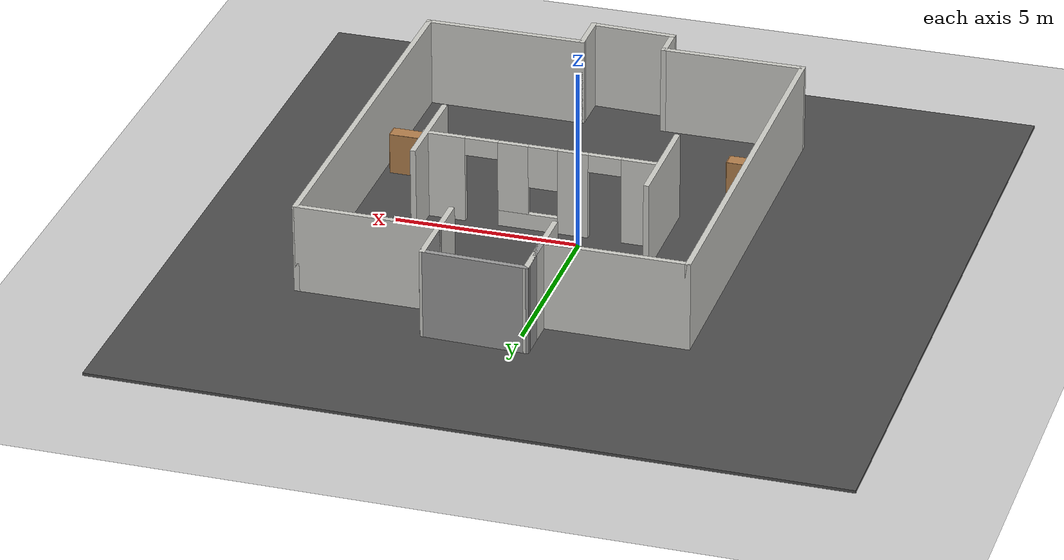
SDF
<sdf version="1.5">
 <world name="default">
  <light name="sun" type="directional">
   <pose>0 0 10 0 -0 0</pose>
   <diffuse>0.8 0.8 0.8 1</diffuse>
   <specular>0.2 0.2 0.2 1</specular>
   <attenuation>
    <range>1000</range>
    <constant>0.9</constant>
    <linear>0.01</linear>
    <quadratic>0.001</quadratic>
   </attenuation>
   <direction>-0.5 0.1 -0.9</direction>
  </light>
  <model name="ground_plane">
   <static>1</static>
   <link name="link">
    <collision name="collision">
     <geometry><plane><normal>0 0 1</normal><size>100 100</size></plane></geometry>
     <surface><friction><ode><mu>100</mu><mu2>50</mu2></ode></friction></surface>
    </collision>
    <visual name="visual">
     <cast_shadows>0</cast_shadows>
     <geometry><plane><normal>0 0 1</normal><size>100 100</size></plane></geometry>
     <material>
      <script><uri>file://media/materials/scripts/gazebo.material</uri><name>Gazebo/Grey</name></script>
     </material>
    </visual>
   </link>
  </model>
  <physics name="default_physics" default="0" type="ode">
   <max_step_size>0.001</max_step_size>
   <real_time_factor>1</real_time_factor>
   <real_time_update_rate>1000</real_time_update_rate>
   <gravity>0 0 -9.8</gravity>
   <magnetic_field>6e-06 2.3e-05 -4.2e-05</magnetic_field>
  </physics>
  <scene><ambient>0.4 0.4 0.4 1</ambient><background>0.7 0.7 0.7 1</background><shadows>1</shadows></scene>
  <audio><device>default</device></audio>
  <spherical_coordinates>
   <surface_model>EARTH_WGS84</surface_model>
   <latitude_deg>0</latitude_deg>
   <longitude_deg>0</longitude_deg>
   <elevation>0</elevation>
   <heading_deg>0</heading_deg>
  </spherical_coordinates>
  <model name="corridor2">
   <pose>1 -1 0 0 -0 0</pose>
   <link name="Wall_0">
    <collision name="Wall_0_Collision">
     <geometry><box><size>1 0.15 2.5</size></box></geometry>
     <pose>0 0 1.25 0 -0 0</pose>
    </collision>
    <visual name="Wall_0_Visual">
     <pose>0 0 1.25 0 -0 0</pose>
     <geometry><box><size>1 0.15 2.5</size></box></geometry>
     <material>
      <script><uri>file://media/materials/scripts/gazebo.material</uri><name>Gazebo/CeilingTiled</name></script>
      <ambient>0.435294 0.796078 0.67451 1</ambient>
     </material>
    </visual>
    <pose>-1.37832 -6.31137 0 0 -0 1.5708</pose>
   </link>
   <link name="Wall_1">
    <collision name="Wall_1_Collision">
     <geometry><box><size>4 0.15 2.5</size></box></geometry>
     <pose>0 0 1.25 0 -0 0</pose>
    </collision>
    <visual name="Wall_1_Visual">
     <pose>0 0 1.25 0 -0 0</pose>
     <geometry><box><size>4 0.15 2.5</size></box></geometry>
     <material>
      <script><uri>file://media/materials/scripts/gazebo.material</uri><name>Gazebo/CeilingTiled</name></script>
      <ambient>1 1 1 1</ambient>
     </material>
    </visual>
    <pose>-3.30332 -5.88637 0 0 -0 3.14159</pose>
   </link>
   <link name="Wall_10">
    <collision name="Wall_10_Collision">
     <geometry><box><size>1.25 0.15 2.5</size></box></geometry>
     <pose>0 0 1.25 0 -0 0</pose>
    </collision>
    <visual name="Wall_10_Visual">
     <pose>0 0 1.25 0 -0 0</pose>
     <geometry><box><size>1.25 0.15 2.5</size></box></geometry>
     <material>
      <script><uri>file://media/materials/scripts/gazebo.material</uri><name>Gazebo/CeilingTiled</name></script>
      <ambient>0.435294 0.796078 0.67451 1</ambient>
     </material>
    </visual>
    <pose>0.878323 -6.26318 0 0 0 -1.5708</pose>
   </link>
   <link name="Wall_11">
    <collision name="Wall_11_Collision">
     <geometry><box><size>2.40795 0.15 2.5</size></box></geometry>
     <pose>0 0 1.25 0 -0 0</pose>
    </collision>
    <visual name="Wall_11_Visual">
     <pose>0 0 1.25 0 -0 0</pose>
     <geometry><box><size>2.40795 0.15 2.5</size></box></geometry>
     <material>
      <script><uri>file://media/materials/scripts/gazebo.material</uri><name>Gazebo/CeilingTiled</name></script>
      <ambient>0.435294 0.796078 0.67451 1</ambient>
     </material>
    </visual>
    <pose>-0.25 -6.77478 0 0 -0 3.10757</pose>
   </link>
   <link name="Wall_13">
    <collision name="Wall_13_Collision">
     <geometry><box><size>2.90772 0.15 2.5</size></box></geometry>
     <pose>0 0 1.25 0 -0 0</pose>
    </collision>
    <visual name="Wall_13_Visual">
     <pose>0 0 1.25 0 -0 0</pose>
     <geometry><box><size>2.90772 0.15 2.5</size></box></geometry>
     <material>
      <script><uri>file://media/materials/scripts/gazebo.material</uri><name>Gazebo/Grey</name></script>
      <ambient>1 1 1 1</ambient>
     </material>
    </visual>
    <pose>0 6.77522 0 0 0 -0.027857</pose>
   </link>
   <link name="Wall_15">
    <collision name="Wall_15_Collision">
     <geometry><box><size>1.5 0.15 2.5</size></box></geometry>
     <pose>0 0 1.25 0 -0 0</pose>
    </collision>
    <visual name="Wall_15_Visual">
     <pose>0 0 1.25 0 -0 0</pose>
     <geometry><box><size>1.5 0.15 2.5</size></box></geometry>
     <material>
      <script><uri>file://media/materials/scripts/gazebo.material</uri><name>Gazebo/CeilingTiled</name></script>
      <ambient>0.996078 0.47451 0.0196078 1</ambient>
     </material>
    </visual>
    <pose>-1.37832 6.13863 0 0 0 -1.5708</pose>
   </link>
   <link name="Wall_16">
    <collision name="Wall_16_Collision">
     <geometry><box><size>1.25 0.15 2.5</size></box></geometry>
     <pose>0 0 1.25 0 -0 0</pose>
    </collision>
    <visual name="Wall_16_Visual">
     <pose>0 0 1.25 0 -0 0</pose>
     <geometry><box><size>1.25 0.15 2.5</size></box></geometry>
     <material>
      <script><uri>file://media/materials/scripts/gazebo.material</uri><name>Gazebo/CeilingTiled</name></script>
      <ambient>0.996078 0.47451 0.0196078 1</ambient>
     </material>
    </visual>
    <pose>-1.37832 4.91363 0 0 0 -1.5708</pose>
   </link>
   <link name="Wall_18">
    <collision name="Wall_18_Collision">
     <geometry><box><size>2.90772 0.15 2.5</size></box></geometry>
     <pose>0 0 1.25 0 -0 0</pose>
    </collision>
    <visual name="Wall_18_Visual">
     <pose>0 0 1.25 0 -0 0</pose>
     <geometry><box><size>2.90772 0.15 2.5</size></box></geometry>
     <material>
      <script><uri>file://media/materials/scripts/gazebo.material</uri><name>Gazebo/CeilingTiled</name></script>
      <ambient>0.996078 0.47451 0.0196078 1</ambient>
     </material>
    </visual>
    <pose>0 6.77522 0 0 0 -0.027857</pose>
   </link>
   <link name="Wall_19">
    <collision name="Wall_19_Collision">
     <geometry><box><size>2.5 0.15 2.5</size></box></geometry>
     <pose>0 0 1.25 0 -0 0</pose>
    </collision>
    <visual name="Wall_19_Visual">
     <pose>0 0 1.25 0 -0 0</pose>
     <geometry><box><size>2.5 0.15 2.5</size></box></geometry>
     <material>
      <script><uri>file://media/materials/scripts/gazebo.material</uri><name>Gazebo/CeilingTiled</name></script>
      <ambient>0.996078 0.47451 0.0196078 1</ambient>
     </material>
    </visual>
    <pose>1.37832 5.56182 0 0 0 -1.5708</pose>
   </link>
   <link name="Wall_2">
    <collision name="Wall_2_Collision">
     <geometry><box><size>11.5 0.15 2.5</size></box></geometry>
     <pose>0 0 1.25 0 -0 0</pose>
    </collision>
    <visual name="Wall_2_Visual">
     <pose>0 0 1.25 0 -0 0</pose>
     <geometry><box><size>11.5 0.15 2.5</size></box></geometry>
     <material>
      <script><uri>file://media/materials/scripts/gazebo.material</uri><name>Gazebo/CeilingTiled</name></script>
      <ambient>1 1 1 1</ambient>
     </material>
    </visual>
    <pose>-5.22832 -0.21137 0 0 -0 1.5708</pose>
   </link>
   <link name="Wall_21">
    <collision name="Wall_21_Collision">
     <geometry><box><size>3 0.15 2.5</size></box></geometry>
     <pose>0 0 1.25 0 -0 0</pose>
    </collision>
    <visual name="Wall_21_Visual">
     <pose>0 0 1.25 0 -0 0</pose>
     <geometry><box><size>3 0.15 2.5</size></box></geometry>
     <material>
      <script><uri>file://media/materials/scripts/gazebo.material</uri><name>Gazebo/CeilingTiled</name></script>
      <ambient>0.921569 0.807843 0.615686 1</ambient>
     </material>
    </visual>
    <pose>-3.0673 0.292319 0 0 -0 1.5708</pose>
   </link>
   <link name="Wall_23">
    <pose>0.138295 0.519192 0 0 -0 0</pose>
    <visual name="Wall_23_Visual_0">
     <pose>-2.71863 0 1.25 0 -0 0</pose>
     <geometry><box><size>1.06274 0.15 2.5</size></box></geometry>
     <material>
      <script><uri>file://media/materials/scripts/gazebo.material</uri><name>Gazebo/CeilingTiled</name></script>
      <ambient>0.921569 0.807843 0.615686 1</ambient>
     </material>
    </visual>
    <collision name="Wall_23_Collision_0">
     <geometry><box><size>1.06274 0.15 2.5</size></box></geometry>
     <pose>-2.71863 0 1.25 0 -0 0</pose>
    </collision>
    <visual name="Wall_23_Visual_1">
     <pose>-0.871028 0 1.25 0 -0 0</pose>
     <geometry><box><size>0.832463 0.15 2.5</size></box></geometry>
     <material>
      <script><uri>file://media/materials/scripts/gazebo.material</uri><name>Gazebo/CeilingTiled</name></script>
      <ambient>0.921569 0.807843 0.615686 1</ambient>
     </material>
    </visual>
    <collision name="Wall_23_Collision_1">
     <geometry><box><size>0.832463 0.15 2.5</size></box></geometry>
     <pose>-0.871028 0 1.25 0 -0 0</pose>
    </collision>
    <visual name="Wall_23_Visual_2">
     <pose>2.66383 0 1.25 0 -0 0</pose>
     <geometry><box><size>1.17233 0.15 2.5</size></box></geometry>
     <material>
      <script><uri>file://media/materials/scripts/gazebo.material</uri><name>Gazebo/CeilingTiled</name></script>
      <ambient>0.921569 0.807843 0.615686 1</ambient>
     </material>
    </visual>
    <collision name="Wall_23_Collision_2">
     <geometry><box><size>1.17233 0.15 2.5</size></box></geometry>
     <pose>2.66383 0 1.25 0 -0 0</pose>
    </collision>
    <visual name="Wall_23_Visual_3">
     <pose>0.361435 0 0.25 0 -0 0</pose>
     <geometry><box><size>1.63246 0.15 0.5</size></box></geometry>
     <material>
      <script><uri>file://media/materials/scripts/gazebo.material</uri><name>Gazebo/CeilingTiled</name></script>
      <ambient>0.921569 0.807843 0.615686 1</ambient>
     </material>
    </visual>
    <collision name="Wall_23_Collision_3">
     <geometry><box><size>1.63246 0.15 0.5</size></box></geometry>
     <pose>0.361435 0 0.25 0 -0 0</pose>
    </collision>
    <visual name="Wall_23_Visual_4">
     <pose>0.761435 0 1.5 0 -0 0</pose>
     <geometry><box><size>0.832463 0.15 2</size></box></geometry>
     <material>
      <script><uri>file://media/materials/scripts/gazebo.material</uri><name>Gazebo/CeilingTiled</name></script>
      <ambient>0.921569 0.807843 0.615686 1</ambient>
     </material>
    </visual>
    <collision name="Wall_23_Collision_4">
     <geometry><box><size>0.832463 0.15 2</size></box></geometry>
     <pose>0.761435 0 1.5 0 -0 0</pose>
    </collision>
    <visual name="Wall_23_Visual_5">
     <pose>-0.054797 0 1.9 0 -0 0</pose>
     <geometry><box><size>0.8 0.15 1.2</size></box></geometry>
     <material>
      <script><uri>file://media/materials/scripts/gazebo.material</uri><name>Gazebo/CeilingTiled</name></script>
      <ambient>0.921569 0.807843 0.615686 1</ambient>
     </material>
    </visual>
    <collision name="Wall_23_Collision_5">
     <geometry><box><size>0.8 0.15 1.2</size></box></geometry>
     <pose>-0.054797 0 1.9 0 -0 0</pose>
    </collision>
    <visual name="Wall_23_Visual_6">
     <pose>-1.73726 0 2.25 0 -0 0</pose>
     <geometry><box><size>0.9 0.15 0.5</size></box></geometry>
     <material>
      <script><uri>file://media/materials/scripts/gazebo.material</uri><name>Gazebo/CeilingTiled</name></script>
      <ambient>0.921569 0.807843 0.615686 1</ambient>
     </material>
    </visual>
    <collision name="Wall_23_Collision_6">
     <geometry><box><size>0.9 0.15 0.5</size></box></geometry>
     <pose>-1.73726 0 2.25 0 -0 0</pose>
    </collision>
    <visual name="Wall_23_Visual_7">
     <pose>1.62767 0 2.25 0 -0 0</pose>
     <geometry><box><size>0.9 0.15 0.5</size></box></geometry>
     <material>
      <script><uri>file://media/materials/scripts/gazebo.material</uri><name>Gazebo/CeilingTiled</name></script>
      <ambient>0.921569 0.807843 0.615686 1</ambient>
     </material>
    </visual>
    <collision name="Wall_23_Collision_7">
     <geometry><box><size>0.9 0.15 0.5</size></box></geometry>
     <pose>1.62767 0 2.25 0 -0 0</pose>
    </collision>
   </link>
   <link name="Wall_25">
    <collision name="Wall_25_Collision">
     <geometry><box><size>2.75 0.15 2.5</size></box></geometry>
     <pose>0 0 1.25 0 -0 0</pose>
    </collision>
    <visual name="Wall_25_Visual">
     <pose>0 0 1.25 0 -0 0</pose>
     <geometry><box><size>2.75 0.15 2.5</size></box></geometry>
     <material>
      <script><uri>file://media/materials/scripts/gazebo.material</uri><name>Gazebo/CeilingTiled</name></script>
      <ambient>0.921569 0.807843 0.615686 1</ambient>
     </material>
    </visual>
    <pose>3.29547 0.28985 0 0 0 -1.5708</pose>
   </link>
   <link name="Wall_3">
    <collision name="Wall_3_Collision">
     <geometry><box><size>4 0.15 2.5</size></box></geometry>
     <pose>0 0 1.25 0 -0 0</pose>
    </collision>
    <visual name="Wall_3_Visual">
     <pose>0 0 1.25 0 -0 0</pose>
     <geometry><box><size>4 0.15 2.5</size></box></geometry>
     <material>
      <script><uri>file://media/materials/scripts/gazebo.material</uri><name>Gazebo/CeilingTiled</name></script>
      <ambient>1 1 1 1</ambient>
     </material>
    </visual>
    <pose>-3.30332 5.46363 0 0 -0 0</pose>
   </link>
   <link name="Wall_4">
    <collision name="Wall_4_Collision">
     <geometry><box><size>1.5 0.15 2.5</size></box></geometry>
     <pose>0 0 1.25 0 -0 0</pose>
    </collision>
    <visual name="Wall_4_Visual">
     <pose>0 0 1.25 0 -0 0</pose>
     <geometry><box><size>1.5 0.15 2.5</size></box></geometry>
     <material>
      <script><uri>file://media/materials/scripts/gazebo.material</uri><name>Gazebo/Grey</name></script>
      <ambient>1 1 1 1</ambient>
     </material>
    </visual>
    <pose>-1.37832 6.13863 0 0 -0 1.5708</pose>
   </link>
   <link name="Wall_6">
    <collision name="Wall_6_Collision">
     <geometry><box><size>1.5 0.15 2.5</size></box></geometry>
     <pose>0 0 1.25 0 -0 0</pose>
    </collision>
    <visual name="Wall_6_Visual">
     <pose>0 0 1.25 0 -0 0</pose>
     <geometry><box><size>1.5 0.15 2.5</size></box></geometry>
     <material>
      <script><uri>file://media/materials/scripts/gazebo.material</uri><name>Gazebo/Grey</name></script>
      <ambient>1 1 1 1</ambient>
     </material>
    </visual>
    <pose>1.37832 6.06182 0 0 0 -1.5708</pose>
   </link>
   <link name="Wall_7">
    <collision name="Wall_7_Collision">
     <geometry><box><size>4 0.15 2.5</size></box></geometry>
     <pose>0 0 1.25 0 -0 0</pose>
    </collision>
    <visual name="Wall_7_Visual">
     <pose>0 0 1.25 0 -0 0</pose>
     <geometry><box><size>4 0.15 2.5</size></box></geometry>
     <material>
      <script><uri>file://media/materials/scripts/gazebo.material</uri><name>Gazebo/CeilingTiled</name></script>
      <ambient>1 1 1 1</ambient>
     </material>
    </visual>
    <pose>3.30332 5.38682 0 0 -0 0</pose>
   </link>
   <link name="Wall_8">
    <collision name="Wall_8_Collision">
     <geometry><box><size>11.25 0.15 2.5</size></box></geometry>
     <pose>0 0 1.25 0 -0 0</pose>
    </collision>
    <visual name="Wall_8_Visual">
     <pose>0 0 1.25 0 -0 0</pose>
     <geometry><box><size>11.25 0.15 2.5</size></box></geometry>
     <material>
      <script><uri>file://media/materials/scripts/gazebo.material</uri><name>Gazebo/CeilingTiled</name></script>
      <ambient>1 1 1 1</ambient>
     </material>
    </visual>
    <pose>5.22832 -0.163182 0 0 0 -1.5708</pose>
   </link>
   <link name="Wall_9">
    <collision name="Wall_9_Collision">
     <geometry><box><size>4.5 0.15 2.5</size></box></geometry>
     <pose>0 0 1.25 0 -0 0</pose>
    </collision>
    <visual name="Wall_9_Visual">
     <pose>0 0 1.25 0 -0 0</pose>
     <geometry><box><size>4.5 0.15 2.5</size></box></geometry>
     <material>
      <script><uri>file://media/materials/scripts/gazebo.material</uri><name>Gazebo/CeilingTiled</name></script>
      <ambient>1 1 1 1</ambient>
     </material>
    </visual>
    <pose>3.05332 -5.71318 0 0 -0 3.14159</pose>
   </link>
   <static>1</static>
  </model>
  <model name="asphalt_plane">
   <static>1</static>
   <link name="link">
    <collision name="collision"><geometry><box><size>20 20 0.1</size></box></geometry></collision>
    <visual name="visual">
     <cast_shadows>0</cast_shadows>
     <geometry><box><size>20 20 0.1</size></box></geometry>
     <material>
      <script>
       <uri>model://asphalt_plane/materials/scripts</uri>
       <uri>model://asphalt_plane/materials/textures</uri>
       <name>vrc/asphalt</name>
      </script>
     </material>
    </visual>
   </link>
  </model>
  <model name="bookshelf">
   <static>1</static>
   <link name="link">
    <inertial><mass>1</mass></inertial>
    <collision name="back">
     <pose>0 0.005 0.6 0 -0 0</pose>
     <geometry><box><size>0.9 0.01 1.2</size></box></geometry>
    </collision>
    <visual name="visual1">
     <pose>0 0.005 0.6 0 -0 0</pose>
     <geometry><box><size>0.9 0.01 1.2</size></box></geometry>
     <material>
      <script><uri>file://media/materials/scripts/gazebo.material</uri><name>Gazebo/Wood</name></script>
     </material>
    </visual>
    <collision name="left_side">
     <pose>0.45 -0.195 0.6 0 -0 0</pose>
     <geometry><box><size>0.02 0.4 1.2</size></box></geometry>
    </collision>
    <visual name="visual2">
     <pose>0.45 -0.195 0.6 0 -0 0</pose>
     <geometry><box><size>0.02 0.4 1.2</size></box></geometry>
     <material>
      <script><uri>file://media/materials/scripts/gazebo.material</uri><name>Gazebo/Wood</name></script>
     </material>
    </visual>
    <collision name="right_side">
     <pose>-0.45 -0.195 0.6 0 -0 0</pose>
     <geometry><box><size>0.02 0.4 1.2</size></box></geometry>
    </collision>
    <visual name="visual3">
     <pose>-0.45 -0.195 0.6 0 -0 0</pose>
     <geometry><box><size>0.02 0.4 1.2</size></box></geometry>
     <material>
      <script><uri>file://media/materials/scripts/gazebo.material</uri><name>Gazebo/Wood</name></script>
     </material>
    </visual>
    <collision name="bottom">
     <pose>0 -0.195 0.03 0 -0 0</pose>
     <geometry><box><size>0.88 0.4 0.06</size></box></geometry>
    </collision>
    <visual name="visual4">
     <pose>0 -0.195 0.03 0 -0 0</pose>
     <geometry><box><size>0.88 0.4 0.06</size></box></geometry>
     <material>
      <script><uri>file://media/materials/scripts/gazebo.material</uri><name>Gazebo/Wood</name></script>
     </material>
    </visual>
    <collision name="top">
     <pose>0 -0.195 1.19 0 -0 0</pose>
     <geometry><box><size>0.88 0.4 0.02</size></box></geometry>
    </collision>
    <visual name="visual5">
     <pose>0 -0.195 1.19 0 -0 0</pose>
     <geometry><box><size>0.88 0.4 0.02</size></box></geometry>
     <material>
      <script><uri>file://media/materials/scripts/gazebo.material</uri><name>Gazebo/Wood</name></script>
     </material>
    </visual>
    <collision name="low_shelf">
     <pose>0 -0.195 0.43 0 -0 0</pose>
     <geometry><box><size>0.88 0.4 0.02</size></box></geometry>
    </collision>
    <visual name="visual6">
     <pose>0 -0.195 0.43 0 -0 0</pose>
     <geometry><box><size>0.88 0.4 0.02</size></box></geometry>
     <material>
      <script><uri>file://media/materials/scripts/gazebo.material</uri><name>Gazebo/Wood</name></script>
     </material>
    </visual>
    <collision name="high_shelf">
     <pose>0 -0.195 0.8 0 -0 0</pose>
     <geometry><box><size>0.88 0.4 0.02</size></box></geometry>
    </collision>
    <visual name="visual7">
     <pose>0 -0.195 0.8 0 -0 0</pose>
     <geometry><box><size>0.88 0.4 0.02</size></box></geometry>
     <material>
      <script><uri>file://media/materials/scripts/gazebo.material</uri><name>Gazebo/Wood</name></script>
     </material>
    </visual>
   </link>
   <pose>-3.52772 -3.43529 0 0 -0 0</pose>
  </model>
  <model name="bookshelf_clone">
   <static>1</static>
   <link name="link">
    <inertial><mass>1</mass></inertial>
    <collision name="back">
     <pose>0 0.005 0.6 0 -0 0</pose>
     <geometry><box><size>0.9 0.01 1.2</size></box></geometry>
    </collision>
    <visual name="visual1">
     <pose>0 0.005 0.6 0 -0 0</pose>
     <geometry><box><size>0.9 0.01 1.2</size></box></geometry>
     <material>
      <script><uri>file://media/materials/scripts/gazebo.material</uri><name>Gazebo/Wood</name></script>
     </material>
    </visual>
    <collision name="left_side">
     <pose>0.45 -0.195 0.6 0 -0 0</pose>
     <geometry><box><size>0.02 0.4 1.2</size></box></geometry>
    </collision>
    <visual name="visual2">
     <pose>0.45 -0.195 0.6 0 -0 0</pose>
     <geometry><box><size>0.02 0.4 1.2</size></box></geometry>
     <material>
      <script><uri>file://media/materials/scripts/gazebo.material</uri><name>Gazebo/Wood</name></script>
     </material>
    </visual>
    <collision name="right_side">
     <pose>-0.45 -0.195 0.6 0 -0 0</pose>
     <geometry><box><size>0.02 0.4 1.2</size></box></geometry>
    </collision>
    <visual name="visual3">
     <pose>-0.45 -0.195 0.6 0 -0 0</pose>
     <geometry><box><size>0.02 0.4 1.2</size></box></geometry>
     <material>
      <script><uri>file://media/materials/scripts/gazebo.material</uri><name>Gazebo/Wood</name></script>
     </material>
    </visual>
    <collision name="bottom">
     <pose>0 -0.195 0.03 0 -0 0</pose>
     <geometry><box><size>0.88 0.4 0.06</size></box></geometry>
    </collision>
    <visual name="visual4">
     <pose>0 -0.195 0.03 0 -0 0</pose>
     <geometry><box><size>0.88 0.4 0.06</size></box></geometry>
     <material>
      <script><uri>file://media/materials/scripts/gazebo.material</uri><name>Gazebo/Wood</name></script>
     </material>
    </visual>
    <collision name="top">
     <pose>0 -0.195 1.19 0 -0 0</pose>
     <geometry><box><size>0.88 0.4 0.02</size></box></geometry>
    </collision>
    <visual name="visual5">
     <pose>0 -0.195 1.19 0 -0 0</pose>
     <geometry><box><size>0.88 0.4 0.02</size></box></geometry>
     <material>
      <script><uri>file://media/materials/scripts/gazebo.material</uri><name>Gazebo/Wood</name></script>
     </material>
    </visual>
    <collision name="low_shelf">
     <pose>0 -0.195 0.43 0 -0 0</pose>
     <geometry><box><size>0.88 0.4 0.02</size></box></geometry>
    </collision>
    <visual name="visual6">
     <pose>0 -0.195 0.43 0 -0 0</pose>
     <geometry><box><size>0.88 0.4 0.02</size></box></geometry>
     <material>
      <script><uri>file://media/materials/scripts/gazebo.material</uri><name>Gazebo/Wood</name></script>
     </material>
    </visual>
    <collision name="high_shelf">
     <pose>0 -0.195 0.8 0 -0 0</pose>
     <geometry><box><size>0.88 0.4 0.02</size></box></geometry>
    </collision>
    <visual name="visual7">
     <pose>0 -0.195 0.8 0 -0 0</pose>
     <geometry><box><size>0.88 0.4 0.02</size></box></geometry>
     <material>
      <script><uri>file://media/materials/scripts/gazebo.material</uri><name>Gazebo/Wood</name></script>
     </material>
    </visual>
   </link>
   <pose>5.52096 -2.41554 0 0 -0 0</pose>
  </model>
 </world>
</sdf>
